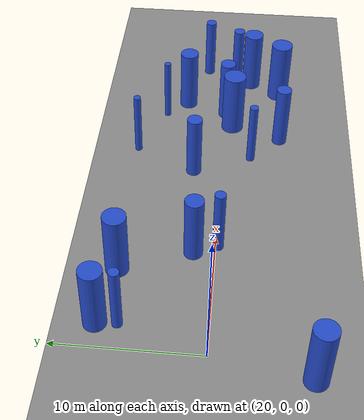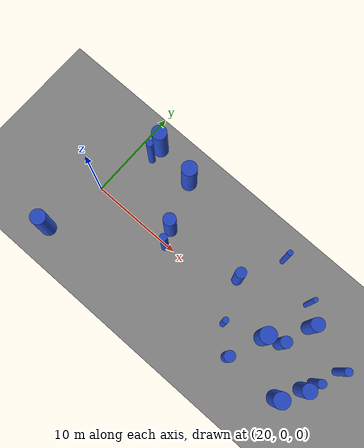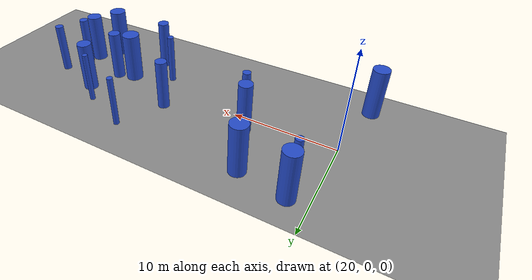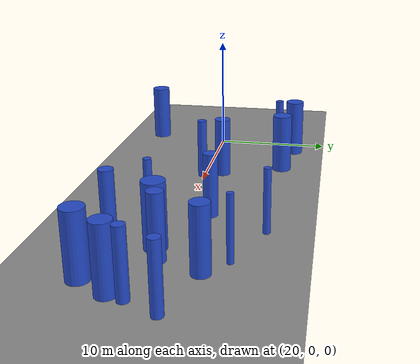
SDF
<sdf version="1.7">
 <world name="forest_randomization_v1">
  <gravity>0 0 -9.8</gravity>
  <light name="sun" type="directional">
   <pose>30 0 20 0 -0 0</pose>
   <diffuse>0.8 0.8 0.8 1</diffuse>
   <specular>0.2 0.2 0.2 1</specular>
   <direction>-0.5 0.5 -1</direction>
   <attenuation><range>10</range></attenuation>
   <spot><inner_angle>0</inner_angle><outer_angle>0</outer_angle><falloff>0</falloff></spot>
  </light>
  <model name="forest_ground_60x20">
   <static>1</static>
   <pose>30 0 0 0 -0 0</pose>
   <link name="link">
    <collision name="collision">
     <geometry><plane><normal>0 0 1</normal><size>60 20</size></plane></geometry>
    </collision>
    <visual name="visual">
     <cast_shadows>0</cast_shadows>
     <geometry><plane><normal>0 0 1</normal><size>60 20</size></plane></geometry>
     <material><ambient>0.45 0.45 0.45 1</ambient><diffuse>0.55 0.55 0.55 1</diffuse></material>
    </visual>
   </link>
  </model>
  <physics name="default_physics" type="ode">
   <max_step_size>0.001</max_step_size>
   <real_time_update_rate>1000</real_time_update_rate>
   <real_time_factor>1</real_time_factor>
  </physics>
  <scene>
   <ambient>0.4 0.4 0.4 1</ambient>
   <background>0.7 0.7 0.7 1</background>
   <shadows>1</shadows>
   <grid>1</grid>
  </scene>
  <magnetic_field>6e-06 2.3e-05 -4.2e-05</magnetic_field>
  <atmosphere type="adiabatic"/>
  <spherical_coordinates>
   <surface_model>EARTH_WGS84</surface_model>
   <latitude_deg>0</latitude_deg>
   <longitude_deg>0</longitude_deg>
   <elevation>0</elevation>
   <heading_deg>0</heading_deg>
  </spherical_coordinates>
  <model name="sparse_0">
   <static>0</static>
   <link name="link">
    <inertial>
     <mass>2</mass>
     <inertia><ixx>4.48378</ixx><ixy>0</ixy><ixz>0</ixz><iyy>4.48378</iyy><iyz>0</iyz><izz>0.634222</izz></inertia>
    </inertial>
    <collision name="collision">
     <geometry><cylinder><length>5</length><radius>0.79638</radius></cylinder></geometry>
     <surface><contact><collide_without_contact>1</collide_without_contact></contact></surface>
    </collision>
    <visual name="visual">
     <geometry><cylinder><length>5</length><radius>0.79638</radius></cylinder></geometry>
     <material>
      <script><uri>file://media/materials/scripts/gazebo.material</uri><name>Gazebo/Blue</name></script>
     </material>
    </visual>
    <gravity>0</gravity>
   </link>
   <pose>18.8624 -6.59778 2.5 0 -0 0</pose>
  </model>
  <model name="sparse_1">
   <static>0</static>
   <link name="link">
    <inertial>
     <mass>2</mass>
     <inertia><ixx>4.47685</ixx><ixy>0</ixy><ixz>0</ixz><iyy>4.47685</iyy><iyz>0</iyz><izz>0.62036</izz></inertia>
    </inertial>
    <collision name="collision">
     <geometry><cylinder><length>5</length><radius>0.78763</radius></cylinder></geometry>
     <surface><contact><collide_without_contact>1</collide_without_contact></contact></surface>
    </collision>
    <visual name="visual">
     <geometry><cylinder><length>5</length><radius>0.78763</radius></cylinder></geometry>
     <material>
      <script><uri>file://media/materials/scripts/gazebo.material</uri><name>Gazebo/Blue</name></script>
     </material>
    </visual>
    <gravity>0</gravity>
   </link>
   <pose>21.8598 7.23489 2.5 0 -0 0</pose>
  </model>
  <model name="sparse_2">
   <static>0</static>
   <link name="link">
    <inertial>
     <mass>2</mass>
     <inertia><ixx>4.23053</ixx><ixy>0</ixy><ixz>0</ixz><iyy>4.23053</iyy><iyz>0</iyz><izz>0.127721</izz></inertia>
    </inertial>
    <collision name="collision">
     <geometry><cylinder><length>5</length><radius>0.35738</radius></cylinder></geometry>
     <surface><contact><collide_without_contact>1</collide_without_contact></contact></surface>
    </collision>
    <visual name="visual">
     <geometry><cylinder><length>5</length><radius>0.35738</radius></cylinder></geometry>
     <material>
      <script><uri>file://media/materials/scripts/gazebo.material</uri><name>Gazebo/Blue</name></script>
     </material>
    </visual>
    <gravity>0</gravity>
   </link>
   <pose>21.8907 5.8087 2.5 0 -0 0</pose>
  </model>
  <model name="medium_3">
   <static>0</static>
   <link name="link">
    <inertial>
     <mass>2</mass>
     <inertia><ixx>4.21736</ixx><ixy>0</ixy><ixz>0</ixz><iyy>4.21736</iyy><iyz>0</iyz><izz>0.101393</izz></inertia>
    </inertial>
    <collision name="collision">
     <geometry><cylinder><length>5</length><radius>0.318423</radius></cylinder></geometry>
     <surface><contact><collide_without_contact>1</collide_without_contact></contact></surface>
    </collision>
    <visual name="visual">
     <geometry><cylinder><length>5</length><radius>0.318423</radius></cylinder></geometry>
     <material>
      <script><uri>file://media/materials/scripts/gazebo.material</uri><name>Gazebo/Blue</name></script>
     </material>
    </visual>
    <gravity>0</gravity>
   </link>
   <pose>38.5539 -2.18857 2.5 0 -0 0</pose>
  </model>
  <model name="medium_4">
   <static>0</static>
   <link name="link">
    <inertial>
     <mass>2</mass>
     <inertia><ixx>4.24268</ixx><ixy>0</ixy><ixz>0</ixz><iyy>4.24268</iyy><iyz>0</iyz><izz>0.152036</izz></inertia>
    </inertial>
    <collision name="collision">
     <geometry><cylinder><length>5</length><radius>0.389918</radius></cylinder></geometry>
     <surface><contact><collide_without_contact>1</collide_without_contact></contact></surface>
    </collision>
    <visual name="visual">
     <geometry><cylinder><length>5</length><radius>0.389918</radius></cylinder></geometry>
     <material>
      <script><uri>file://media/materials/scripts/gazebo.material</uri><name>Gazebo/Blue</name></script>
     </material>
    </visual>
    <gravity>0</gravity>
   </link>
   <pose>29.0751 -0.185689 2.5 0 -0 0</pose>
  </model>
  <model name="medium_5">
   <static>0</static>
   <link name="link">
    <inertial>
     <mass>2</mass>
     <inertia><ixx>4.32265</ixx><ixy>0</ixy><ixz>0</ixz><iyy>4.32265</iyy><iyz>0</iyz><izz>0.311974</izz></inertia>
    </inertial>
    <collision name="collision">
     <geometry><cylinder><length>5</length><radius>0.558546</radius></cylinder></geometry>
     <surface><contact><collide_without_contact>1</collide_without_contact></contact></surface>
    </collision>
    <visual name="visual">
     <geometry><cylinder><length>5</length><radius>0.558546</radius></cylinder></geometry>
     <material>
      <script><uri>file://media/materials/scripts/gazebo.material</uri><name>Gazebo/Blue</name></script>
     </material>
    </visual>
    <gravity>0</gravity>
   </link>
   <pose>36.7389 2.0762 2.5 0 -0 0</pose>
  </model>
  <model name="medium_6">
   <static>0</static>
   <link name="link">
    <inertial>
     <mass>2</mass>
     <inertia>
      <ixx>4.20432</ixx>
      <ixy>0</ixy>
      <ixz>0</ixz>
      <iyy>4.20432</iyy>
      <iyz>0</iyz>
      <izz>0.0753067</izz>
     </inertia>
    </inertial>
    <collision name="collision">
     <geometry><cylinder><length>5</length><radius>0.274421</radius></cylinder></geometry>
     <surface><contact><collide_without_contact>1</collide_without_contact></contact></surface>
    </collision>
    <visual name="visual">
     <geometry><cylinder><length>5</length><radius>0.274421</radius></cylinder></geometry>
     <material>
      <script><uri>file://media/materials/scripts/gazebo.material</uri><name>Gazebo/Blue</name></script>
     </material>
    </visual>
    <gravity>0</gravity>
   </link>
   <pose>38.963 6.56866 2.5 0 -0 0</pose>
  </model>
  <model name="medium_7">
   <static>0</static>
   <link name="link">
    <inertial>
     <mass>2</mass>
     <inertia><ixx>4.4971</ixx><ixy>0</ixy><ixz>0</ixz><iyy>4.4971</iyy><iyz>0</iyz><izz>0.660865</izz></inertia>
    </inertial>
    <collision name="collision">
     <geometry><cylinder><length>5</length><radius>0.812936</radius></cylinder></geometry>
     <surface><contact><collide_without_contact>1</collide_without_contact></contact></surface>
    </collision>
    <visual name="visual">
     <geometry><cylinder><length>5</length><radius>0.812936</radius></cylinder></geometry>
     <material>
      <script><uri>file://media/materials/scripts/gazebo.material</uri><name>Gazebo/Blue</name></script>
     </material>
    </visual>
    <gravity>0</gravity>
   </link>
   <pose>26.4467 6.46909 2.5 0 -0 0</pose>
  </model>
  <model name="medium_8">
   <static>0</static>
   <link name="link">
    <inertial>
     <mass>2</mass>
     <inertia><ixx>4.38618</ixx><ixy>0</ixy><ixz>0</ixz><iyy>4.38618</iyy><iyz>0</iyz><izz>0.439036</izz></inertia>
    </inertial>
    <collision name="collision">
     <geometry><cylinder><length>5</length><radius>0.662598</radius></cylinder></geometry>
     <surface><contact><collide_without_contact>1</collide_without_contact></contact></surface>
    </collision>
    <visual name="visual">
     <geometry><cylinder><length>5</length><radius>0.662598</radius></cylinder></geometry>
     <material>
      <script><uri>file://media/materials/scripts/gazebo.material</uri><name>Gazebo/Blue</name></script>
     </material>
    </visual>
    <gravity>0</gravity>
   </link>
   <pose>28.3566 1.46958 2.5 0 -0 0</pose>
  </model>
  <model name="dense_9">
   <static>0</static>
   <link name="link">
    <inertial>
     <mass>2</mass>
     <inertia><ixx>4.50552</ixx><ixy>0</ixy><ixz>0</ixz><iyy>4.50552</iyy><iyz>0</iyz><izz>0.677714</izz></inertia>
    </inertial>
    <collision name="collision">
     <geometry><cylinder><length>5</length><radius>0.823234</radius></cylinder></geometry>
     <surface><contact><collide_without_contact>1</collide_without_contact></contact></surface>
    </collision>
    <visual name="visual">
     <geometry><cylinder><length>5</length><radius>0.823234</radius></cylinder></geometry>
     <material>
      <script><uri>file://media/materials/scripts/gazebo.material</uri><name>Gazebo/Blue</name></script>
     </material>
    </visual>
    <gravity>0</gravity>
   </link>
   <pose>47.0313 -4.28747 2.5 0 -0 0</pose>
  </model>
  <model name="dense_10">
   <static>0</static>
   <link name="link">
    <inertial>
     <mass>2</mass>
     <inertia>
      <ixx>4.19836</ixx>
      <ixy>0</ixy>
      <ixz>0</ixz>
      <iyy>4.19836</iyy>
      <iyz>0</iyz>
      <izz>0.0633904</izz>
     </inertia>
    </inertial>
    <collision name="collision">
     <geometry><cylinder><length>5</length><radius>0.251774</radius></cylinder></geometry>
     <surface><contact><collide_without_contact>1</collide_without_contact></contact></surface>
    </collision>
    <visual name="visual">
     <geometry><cylinder><length>5</length><radius>0.251774</radius></cylinder></geometry>
     <material>
      <script><uri>file://media/materials/scripts/gazebo.material</uri><name>Gazebo/Blue</name></script>
     </material>
    </visual>
    <gravity>0</gravity>
   </link>
   <pose>43.5288 4.71902 2.5 0 -0 0</pose>
  </model>
  <model name="dense_11">
   <static>0</static>
   <link name="link">
    <inertial>
     <mass>2</mass>
     <inertia><ixx>4.43767</ixx><ixy>0</ixy><ixz>0</ixz><iyy>4.43767</iyy><iyz>0</iyz><izz>0.542002</izz></inertia>
    </inertial>
    <collision name="collision">
     <geometry><cylinder><length>5</length><radius>0.736208</radius></cylinder></geometry>
     <surface><contact><collide_without_contact>1</collide_without_contact></contact></surface>
    </collision>
    <visual name="visual">
     <geometry><cylinder><length>5</length><radius>0.736208</radius></cylinder></geometry>
     <material>
      <script><uri>file://media/materials/scripts/gazebo.material</uri><name>Gazebo/Blue</name></script>
     </material>
    </visual>
    <gravity>0</gravity>
   </link>
   <pose>48.3767 -1.99451 2.5 0 -0 0</pose>
  </model>
  <model name="dense_12">
   <static>0</static>
   <link name="link">
    <inertial>
     <mass>2</mass>
     <inertia><ixx>4.34046</ixx><ixy>0</ixy><ixz>0</ixz><iyy>4.34046</iyy><iyz>0</iyz><izz>0.347578</izz></inertia>
    </inertial>
    <collision name="collision">
     <geometry><cylinder><length>5</length><radius>0.589558</radius></cylinder></geometry>
     <surface><contact><collide_without_contact>1</collide_without_contact></contact></surface>
    </collision>
    <visual name="visual">
     <geometry><cylinder><length>5</length><radius>0.589558</radius></cylinder></geometry>
     <material>
      <script><uri>file://media/materials/scripts/gazebo.material</uri><name>Gazebo/Blue</name></script>
     </material>
    </visual>
    <gravity>0</gravity>
   </link>
   <pose>43.9906 -0.044543 2.5 0 -0 0</pose>
  </model>
  <model name="dense_13">
   <static>0</static>
   <link name="link">
    <inertial>
     <mass>2</mass>
     <inertia><ixx>4.52782</ixx><ixy>0</ixy><ixz>0</ixz><iyy>4.52782</iyy><iyz>0</iyz><izz>0.722304</izz></inertia>
    </inertial>
    <collision name="collision">
     <geometry><cylinder><length>5</length><radius>0.849885</radius></cylinder></geometry>
     <surface><contact><collide_without_contact>1</collide_without_contact></contact></surface>
    </collision>
    <visual name="visual">
     <geometry><cylinder><length>5</length><radius>0.849885</radius></cylinder></geometry>
     <material>
      <script><uri>file://media/materials/scripts/gazebo.material</uri><name>Gazebo/Blue</name></script>
     </material>
    </visual>
    <gravity>0</gravity>
   </link>
   <pose>42.3674 -0.637975 2.5 0 -0 0</pose>
  </model>
  <model name="dense_14">
   <static>0</static>
   <link name="link">
    <inertial>
     <mass>2</mass>
     <inertia><ixx>4.24982</ixx><ixy>0</ixy><ixz>0</ixz><iyy>4.24982</iyy><iyz>0</iyz><izz>0.166305</izz></inertia>
    </inertial>
    <collision name="collision">
     <geometry><cylinder><length>5</length><radius>0.407805</radius></cylinder></geometry>
     <surface><contact><collide_without_contact>1</collide_without_contact></contact></surface>
    </collision>
    <visual name="visual">
     <geometry><cylinder><length>5</length><radius>0.407805</radius></cylinder></geometry>
     <material>
      <script><uri>file://media/materials/scripts/gazebo.material</uri><name>Gazebo/Blue</name></script>
     </material>
    </visual>
    <gravity>0</gravity>
   </link>
   <pose>49.924 1.63094 2.5 0 -0 0</pose>
  </model>
  <model name="dense_15">
   <static>0</static>
   <link name="link">
    <inertial>
     <mass>2</mass>
     <inertia><ixx>4.25952</ixx><ixy>0</ixy><ixz>0</ixz><iyy>4.25952</iyy><iyz>0</iyz><izz>0.185714</izz></inertia>
    </inertial>
    <collision name="collision">
     <geometry><cylinder><length>5</length><radius>0.430946</radius></cylinder></geometry>
     <surface><contact><collide_without_contact>1</collide_without_contact></contact></surface>
    </collision>
    <visual name="visual">
     <geometry><cylinder><length>5</length><radius>0.430946</radius></cylinder></geometry>
     <material>
      <script><uri>file://media/materials/scripts/gazebo.material</uri><name>Gazebo/Blue</name></script>
     </material>
    </visual>
    <gravity>0</gravity>
   </link>
   <pose>48.7948 -0.771693 2.5 0 -0 0</pose>
  </model>
  <model name="dense_16">
   <static>0</static>
   <link name="link">
    <inertial>
     <mass>2</mass>
     <inertia><ixx>4.40784</ixx><ixy>0</ixy><ixz>0</ixz><iyy>4.40784</iyy><iyz>0</iyz><izz>0.482349</izz></inertia>
    </inertial>
    <collision name="collision">
     <geometry><cylinder><length>5</length><radius>0.694514</radius></cylinder></geometry>
     <surface><contact><collide_without_contact>1</collide_without_contact></contact></surface>
    </collision>
    <visual name="visual">
     <geometry><cylinder><length>5</length><radius>0.694514</radius></cylinder></geometry>
     <material>
      <script><uri>file://media/materials/scripts/gazebo.material</uri><name>Gazebo/Blue</name></script>
     </material>
    </visual>
    <gravity>0</gravity>
   </link>
   <pose>45.1455 3.10739 2.5 0 -0 0</pose>
  </model>
  <model name="dense_17">
   <static>0</static>
   <link name="link">
    <inertial>
     <mass>2</mass>
     <inertia><ixx>4.32237</ixx><ixy>0</ixy><ixz>0</ixz><iyy>4.32237</iyy><iyz>0</iyz><izz>0.311405</izz></inertia>
    </inertial>
    <collision name="collision">
     <geometry><cylinder><length>5</length><radius>0.558037</radius></cylinder></geometry>
     <surface><contact><collide_without_contact>1</collide_without_contact></contact></surface>
    </collision>
    <visual name="visual">
     <geometry><cylinder><length>5</length><radius>0.558037</radius></cylinder></geometry>
     <material>
      <script><uri>file://media/materials/scripts/gazebo.material</uri><name>Gazebo/Blue</name></script>
     </material>
    </visual>
    <gravity>0</gravity>
   </link>
   <pose>40.9579 -4.41615 2.5 0 -0 0</pose>
  </model>
 </world>
</sdf>
